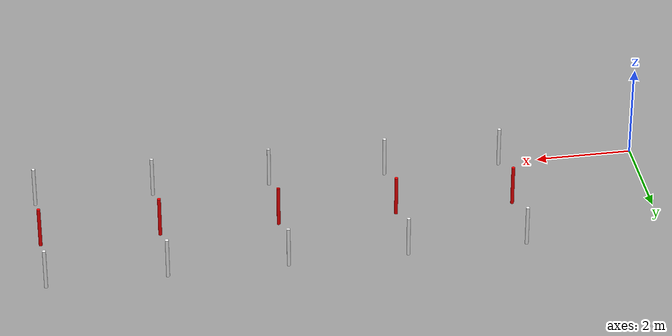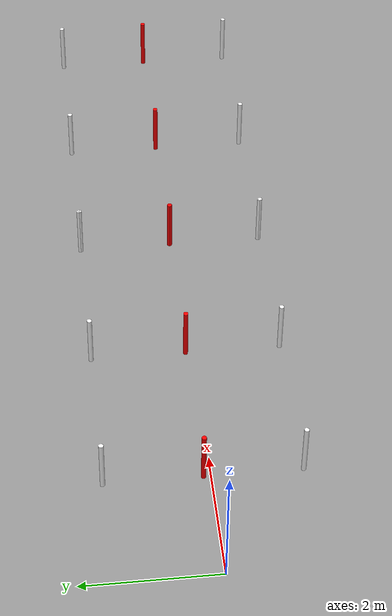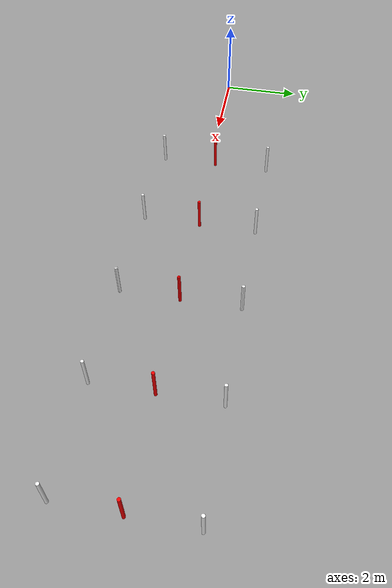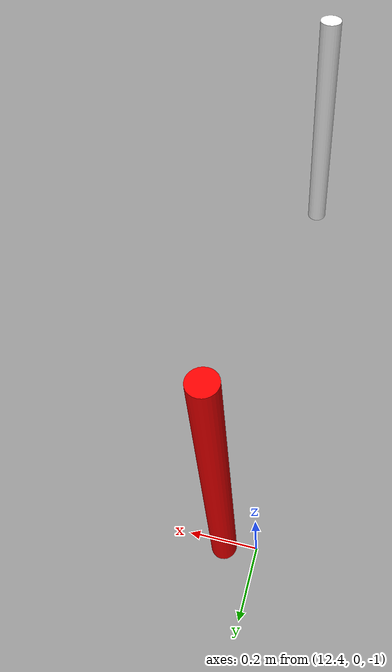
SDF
<sdf version="1.10">
 <world name="woolletPool_testworld">
  <plugin name="gz::sim::systems::Physics" filename="gz-sim-physics-system"/>
  <plugin name="gz::sim::systems::UserCommands" filename="gz-sim-user-commands-system"/>
  <plugin name="gz::sim::systems::SceneBroadcaster" filename="gz-sim-scene-broadcaster-system"/>
  <plugin name="gz::sim::systems::Sensors" filename="gz-sim-sensors-system">
   <render_engine>ogre2</render_engine>
  </plugin>
  <plugin filename="gz-sim-altimeter-system" name="gz::sim::systems::Altimeter"/>
  <plugin filename="gz-sim-imu-system" name="gz::sim::systems::Imu"/>
  <plugin filename="gz-sim-dvl-system" name="gz::sim::systems::DopplerVelocityLogSystem"/>
  <gravity>0 0 -9.81</gravity>
  <magnetic_field>5.5645e-06 2.28758e-05 -4.23884e-05</magnetic_field>
  <atmosphere type="adiabatic"/>
  <physics type="ode">
   <max_step_size>0.001</max_step_size>
   <real_time_factor>1</real_time_factor>
   <real_time_update_rate>1000</real_time_update_rate>
  </physics>
  <scene>
   <ambient>0.6 0.6 0.6 1</ambient>
   <background>0.53 0.81 0.92 1</background>
   <shadows>true</shadows>
  </scene>
  <model name="water_plane">
   <static>true</static>
   <link name="link">
    <visual name="water_plane">
     <geometry><plane><size>100 100</size><normal>0 0 1</normal></plane></geometry>
     <material><ambient>0 0 1 0.5</ambient><diffuse>0 0 1 0.5</diffuse><specular>0 0 1 0.5</specular></material>
    </visual>
   </link>
  </model>
  <model name="pool_pole_field">
   <static>true</static>
   <pose>5.0 0 -1.5 0 0 1.57</pose>
   <link name="rowm1_left_white">
    <pose>-1.5 -2.5 0.9 0 0 0</pose>
    <collision name="collision">
     <geometry><cylinder><radius>0.0375</radius><length>0.9</length></cylinder></geometry>
    </collision>
    <visual name="visual">
     <geometry><cylinder><radius>0.0375</radius><length>0.9</length></cylinder></geometry>
     <material><ambient>1 1 1 1</ambient><diffuse>1 1 1 1</diffuse></material>
    </visual>
   </link>
   <link name="rowm1_center_red">
    <pose>0.0 -2.5 0.9 0 0 0</pose>
    <collision name="collision">
     <geometry><cylinder><radius>0.0375</radius><length>0.9</length></cylinder></geometry>
    </collision>
    <visual name="visual">
     <geometry><cylinder><radius>0.0375</radius><length>0.9</length></cylinder></geometry>
     <material><ambient>1 0 0 1</ambient><diffuse>1 0 0 1</diffuse></material>
    </visual>
   </link>
   <link name="rowm1_right_white">
    <pose>1.5 -2.5 0.9 0 0 0</pose>
    <collision name="collision">
     <geometry><cylinder><radius>0.0375</radius><length>0.9</length></cylinder></geometry>
    </collision>
    <visual name="visual">
     <geometry><cylinder><radius>0.0375</radius><length>0.9</length></cylinder></geometry>
     <material><ambient>1 1 1 1</ambient><diffuse>1 1 1 1</diffuse></material>
    </visual>
   </link>
   <link name="row0_left_white">
    <pose>-1.5 0.0 0.9 0 0 0</pose>
    <collision name="collision">
     <geometry><cylinder><radius>0.0375</radius><length>0.9</length></cylinder></geometry>
    </collision>
    <visual name="visual">
     <geometry><cylinder><radius>0.0375</radius><length>0.9</length></cylinder></geometry>
     <material><ambient>1 1 1 1</ambient><diffuse>1 1 1 1</diffuse></material>
    </visual>
   </link>
   <link name="row0_center_red">
    <pose>0.0 0.0 0.9 0 0 0</pose>
    <collision name="collision">
     <geometry><cylinder><radius>0.0375</radius><length>0.9</length></cylinder></geometry>
    </collision>
    <visual name="visual">
     <geometry><cylinder><radius>0.0375</radius><length>0.9</length></cylinder></geometry>
     <material><ambient>1 0 0 1</ambient><diffuse>1 0 0 1</diffuse></material>
    </visual>
   </link>
   <link name="row0_right_white">
    <pose>1.5 0.0 0.9 0 0 0</pose>
    <collision name="collision">
     <geometry><cylinder><radius>0.0375</radius><length>0.9</length></cylinder></geometry>
    </collision>
    <visual name="visual">
     <geometry><cylinder><radius>0.0375</radius><length>0.9</length></cylinder></geometry>
     <material><ambient>1 1 1 1</ambient><diffuse>1 1 1 1</diffuse></material>
    </visual>
   </link>
   <link name="rowp1_left_white">
    <pose>-1.5 2.5 0.9 0 0 0</pose>
    <collision name="collision">
     <geometry><cylinder><radius>0.0375</radius><length>0.9</length></cylinder></geometry>
    </collision>
    <visual name="visual">
     <geometry><cylinder><radius>0.0375</radius><length>0.9</length></cylinder></geometry>
     <material><ambient>1 1 1 1</ambient><diffuse>1 1 1 1</diffuse></material>
    </visual>
   </link>
   <link name="rowp1_center_red">
    <pose>0.0 2.5 0.9 0 0 0</pose>
    <collision name="collision">
     <geometry><cylinder><radius>0.0375</radius><length>0.9</length></cylinder></geometry>
    </collision>
    <visual name="visual">
     <geometry><cylinder><radius>0.0375</radius><length>0.9</length></cylinder></geometry>
     <material><ambient>1 0 0 1</ambient><diffuse>1 0 0 1</diffuse></material>
    </visual>
   </link>
   <link name="rowp1_right_white">
    <pose>1.5 2.5 0.9 0 0 0</pose>
    <collision name="collision">
     <geometry><cylinder><radius>0.0375</radius><length>0.9</length></cylinder></geometry>
    </collision>
    <visual name="visual">
     <geometry><cylinder><radius>0.0375</radius><length>0.9</length></cylinder></geometry>
     <material><ambient>1 1 1 1</ambient><diffuse>1 1 1 1</diffuse></material>
    </visual>
   </link>
  </model>
  <model name="pool_pole_field0">
   <static>true</static>
   <pose>10.0 0 -1.5 0 0 1.57</pose>
   <link name="rowm1_left_white">
    <pose>-1.5 -2.5 0.9 0 0 0</pose>
    <collision name="collision">
     <geometry><cylinder><radius>0.0375</radius><length>0.9</length></cylinder></geometry>
    </collision>
    <visual name="visual">
     <geometry><cylinder><radius>0.0375</radius><length>0.9</length></cylinder></geometry>
     <material><ambient>1 1 1 1</ambient><diffuse>1 1 1 1</diffuse></material>
    </visual>
   </link>
   <link name="rowm1_center_red">
    <pose>0.0 -2.5 0.9 0 0 0</pose>
    <collision name="collision">
     <geometry><cylinder><radius>0.0375</radius><length>0.9</length></cylinder></geometry>
    </collision>
    <visual name="visual">
     <geometry><cylinder><radius>0.0375</radius><length>0.9</length></cylinder></geometry>
     <material><ambient>1 0 0 1</ambient><diffuse>1 0 0 1</diffuse></material>
    </visual>
   </link>
   <link name="rowm1_right_white">
    <pose>1.5 -2.5 0.9 0 0 0</pose>
    <collision name="collision">
     <geometry><cylinder><radius>0.0375</radius><length>0.9</length></cylinder></geometry>
    </collision>
    <visual name="visual">
     <geometry><cylinder><radius>0.0375</radius><length>0.9</length></cylinder></geometry>
     <material><ambient>1 1 1 1</ambient><diffuse>1 1 1 1</diffuse></material>
    </visual>
   </link>
   <link name="row0_left_white">
    <pose>-1.5 0.0 0.9 0 0 0</pose>
    <collision name="collision">
     <geometry><cylinder><radius>0.0375</radius><length>0.9</length></cylinder></geometry>
    </collision>
    <visual name="visual">
     <geometry><cylinder><radius>0.0375</radius><length>0.9</length></cylinder></geometry>
     <material><ambient>1 1 1 1</ambient><diffuse>1 1 1 1</diffuse></material>
    </visual>
   </link>
   <link name="row0_center_red">
    <pose>0.0 0.0 0.9 0 0 0</pose>
    <collision name="collision">
     <geometry><cylinder><radius>0.0375</radius><length>0.9</length></cylinder></geometry>
    </collision>
    <visual name="visual">
     <geometry><cylinder><radius>0.0375</radius><length>0.9</length></cylinder></geometry>
     <material><ambient>1 0 0 1</ambient><diffuse>1 0 0 1</diffuse></material>
    </visual>
   </link>
   <link name="row0_right_white">
    <pose>1.5 0.0 0.9 0 0 0</pose>
    <collision name="collision">
     <geometry><cylinder><radius>0.0375</radius><length>0.9</length></cylinder></geometry>
    </collision>
    <visual name="visual">
     <geometry><cylinder><radius>0.0375</radius><length>0.9</length></cylinder></geometry>
     <material><ambient>1 1 1 1</ambient><diffuse>1 1 1 1</diffuse></material>
    </visual>
   </link>
   <link name="rowp1_left_white">
    <pose>-1.5 2.5 0.9 0 0 0</pose>
    <collision name="collision">
     <geometry><cylinder><radius>0.0375</radius><length>0.9</length></cylinder></geometry>
    </collision>
    <visual name="visual">
     <geometry><cylinder><radius>0.0375</radius><length>0.9</length></cylinder></geometry>
     <material><ambient>1 1 1 1</ambient><diffuse>1 1 1 1</diffuse></material>
    </visual>
   </link>
   <link name="rowp1_center_red">
    <pose>0.0 2.5 0.9 0 0 0</pose>
    <collision name="collision">
     <geometry><cylinder><radius>0.0375</radius><length>0.9</length></cylinder></geometry>
    </collision>
    <visual name="visual">
     <geometry><cylinder><radius>0.0375</radius><length>0.9</length></cylinder></geometry>
     <material><ambient>1 0 0 1</ambient><diffuse>1 0 0 1</diffuse></material>
    </visual>
   </link>
   <link name="rowp1_right_white">
    <pose>1.5 2.5 0.9 0 0 0</pose>
    <collision name="collision">
     <geometry><cylinder><radius>0.0375</radius><length>0.9</length></cylinder></geometry>
    </collision>
    <visual name="visual">
     <geometry><cylinder><radius>0.0375</radius><length>0.9</length></cylinder></geometry>
     <material><ambient>1 1 1 1</ambient><diffuse>1 1 1 1</diffuse></material>
    </visual>
   </link>
  </model>
  <model name="observer_camera">
   <static>true</static>
   <pose>-4 0 2 0 0 0</pose>
   <link name="camera_link">
    <sensor name="observer_camera_sensor" type="camera">
     <topic>/observer/image_raw</topic>
     <update_rate>30</update_rate>
     <camera name="__default__">
      <horizontal_fov>1.047</horizontal_fov>
      <image><width>640</width><height>480</height><format>RGB_INT8</format></image>
      <clip><near>0.1</near><far>100</far></clip>
     </camera>
    </sensor>
   </link>
  </model>
 </world>
</sdf>
